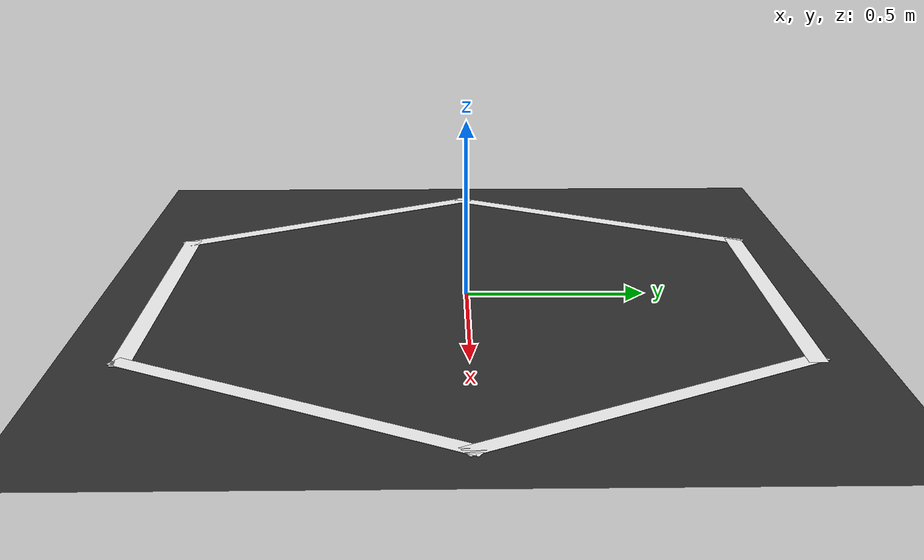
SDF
<?xml version="1.0" ?>
<sdf version="1.8">
  <world name="rc_track_world">
    <plugin filename="gz-sim-physics-system" name="gz::sim::systems::Physics"/>
    <plugin filename="gz-sim-user-commands-system" name="gz::sim::systems::UserCommands"/>
    <plugin filename="gz-sim-scene-broadcaster-system" name="gz::sim::systems::SceneBroadcaster"/>
    <plugin filename="gz-sim-sensors-system" name="gz::sim::systems::Sensors">
      <render_engine>ogre2</render_engine>
    </plugin>

    <light type="directional" name="sun">
      <cast_shadows>true</cast_shadows>
      <pose>0 0 10 0 0 0</pose>
      <diffuse>0.8 0.8 0.8 1</diffuse>
      <specular>0.2 0.2 0.2 1</specular>
      <direction>-0.5 0.1 -0.9</direction>
    </light>

    <model name="ground_plane">
      <static>true</static>
      <link name="link">
        <collision name="collision">
          <geometry><plane><normal>0 0 1</normal><size>100 100</size></plane></geometry>
        </collision>
        <visual name="visual">
          <geometry><plane><normal>0 0 1</normal><size>100 100</size></plane></geometry>
          <material>
            <ambient>0.2 0.2 0.2 1</ambient>
            <diffuse>0.2 0.2 0.2 1</diffuse>
          </material>
        </visual>
      </link>
    </model>

    <model name="line_track">
      <static>true</static>
      <link name="line_top">
        <pose>0 0.866 0.001 0 0 0</pose>
        <visual name="visual">
          <geometry><box><size>1.05 0.05 0.001</size></box></geometry>
          <material><ambient>1 1 1 1</ambient><diffuse>1 1 1 1</diffuse></material>
        </visual>
      </link>
      <link name="line_top_left">
        <pose>-0.75 0.433 0.001 0 0 1.0472</pose>
        <visual name="visual">
          <geometry><box><size>1.05 0.05 0.001</size></box></geometry>
          <material><ambient>1 1 1 1</ambient><diffuse>1 1 1 1</diffuse></material>
        </visual>
      </link>
      <link name="line_bottom_left">
        <pose>-0.75 -0.433 0.001 0 0 -1.0472</pose>
        <visual name="visual">
          <geometry><box><size>1.05 0.05 0.001</size></box></geometry>
          <material><ambient>1 1 1 1</ambient><diffuse>1 1 1 1</diffuse></material>
        </visual>
      </link>
      <link name="line_bottom">
        <pose>0 -0.866 0.001 0 0 0</pose>
        <visual name="visual">
          <geometry><box><size>1.05 0.05 0.001</size></box></geometry>
          <material><ambient>1 1 1 1</ambient><diffuse>1 1 1 1</diffuse></material>
        </visual>
      </link>
      <link name="line_bottom_right">
        <pose>0.75 -0.433 0.001 0 0 1.0472</pose>
        <visual name="visual">
          <geometry><box><size>1.05 0.05 0.001</size></box></geometry>
          <material><ambient>1 1 1 1</ambient><diffuse>1 1 1 1</diffuse></material>
        </visual>
      </link>
      <link name="line_top_right">
        <pose>0.75 0.433 0.001 0 0 -1.0472</pose>
        <visual name="visual">
          <geometry><box><size>1.05 0.05 0.001</size></box></geometry>
          <material><ambient>1 1 1 1</ambient><diffuse>1 1 1 1</diffuse></material>
        </visual>
      </link>
    </model>

    <model name="overhead_camera">
      <static>true</static>
      <pose>0 0 2.5 0 1.5708 0</pose>
      <link name="camera_link">
        <sensor name="camera_sensor" type="camera">
          <camera>
            <horizontal_fov>1.047</horizontal_fov>
            <image>
              <width>640</width>
              <height>480</height>
            </image>
            <clip><near>0.1</near><far>10</far></clip>
          </camera>
          <always_on>1</always_on>
          <update_rate>30</update_rate>
          <topic>camera/image_raw</topic>
        </sensor>
      </link>
    </model>
  </world>
</sdf>
